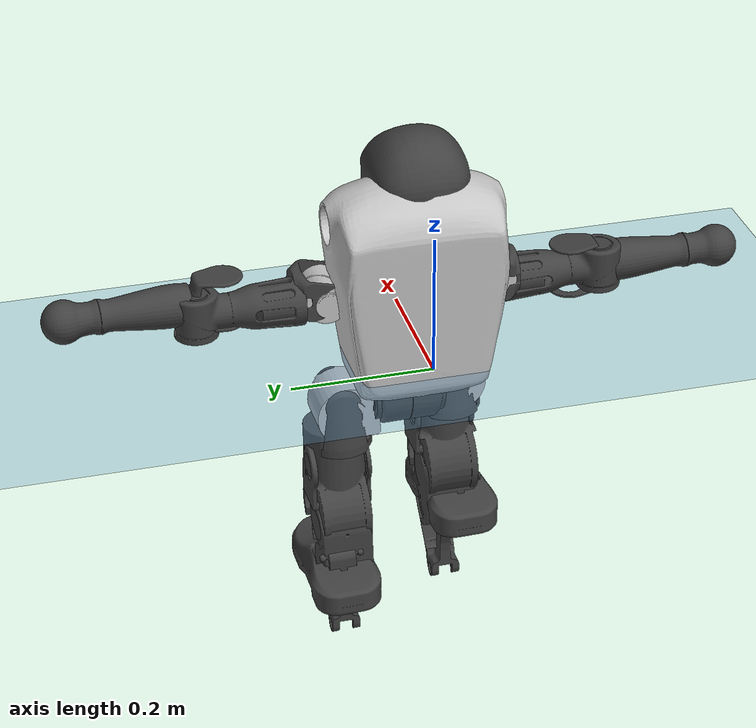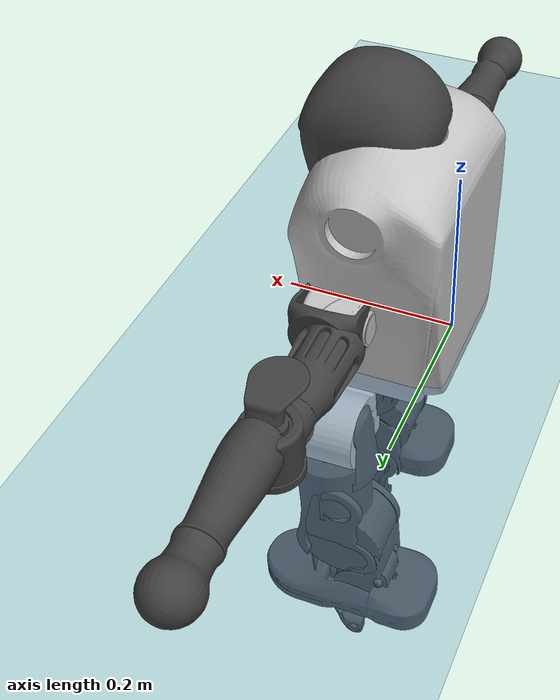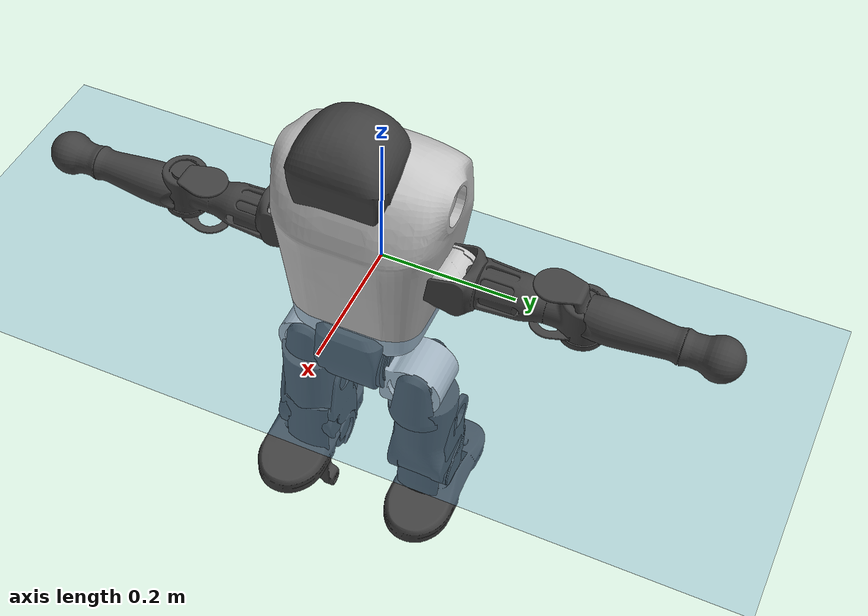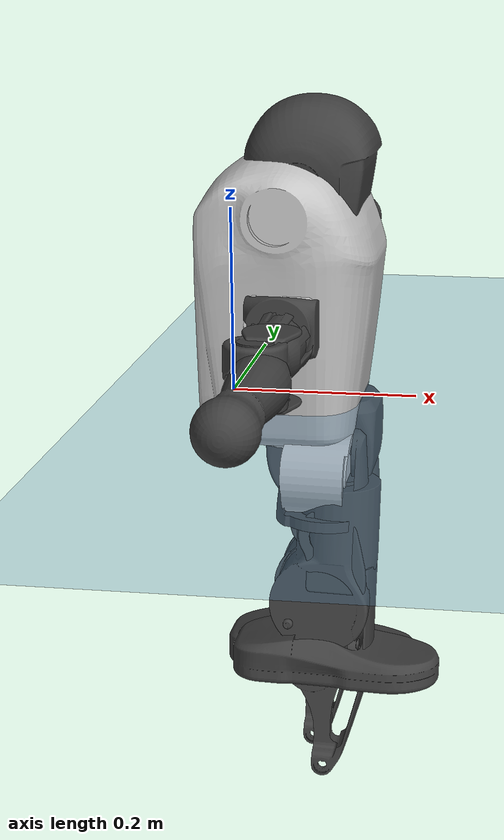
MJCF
<mujoco model="T1">
  <compiler angle="radian" assetdir="assets" balanceinertia="true" inertiafromgeom="false"/>

  <option timestep="0.005" density="1.2" viscosity="2e-05"/>

  <size nkey="1"/>

  <visual>
    <quality shadowsize="8192"/>
    <map shadowclip="0.5"/>
  </visual>

  <default>
    <default class="/">
      <joint armature="0.01" damping="0.01" frictionloss="0.1"/>
      <geom contype="0" conaffinity="0" group="1" solref="-1000 -80"/>
      <site size="0.01 0.005 0.005" group="5"/>
      <general forcelimited="true" biastype="affine" gainprm="25" biasprm="0 -25 -0.6"/>
      <default class="t1">
        <geom rgba="0.25 0.25 0.25 1"/>
        <default class="visual">
          <geom type="mesh" group="2"/>
        </default>
        <default class="collision">
          <geom group="3"/>
        </default>
        <default class="foot">
          <geom size="0.1115 0.05 0.015" type="box" condim="6" group="4" priority="1" solimp="0.015 1 0.015"/>
        </default>
        <default class="reward_collision_sphere">
          <geom group="5" rgba="1 0 0 1"/>
        </default>
      </default>
    </default>
  </default>

  <asset>
    <texture type="skybox" colorspace="auto" name="//unnamed_texture_0" builtin="gradient" rgb1="0.95 0.95 0.95" rgb2="0.95 0.95 0.95" width="100" height="600"/>
    <texture type="2d" colorspace="auto" name="texplane" builtin="checker" rgb1="0.345 0.575 0.748" rgb2="0.345 0.575 0.748" markrgb="1 1 1" width="512" height="512"/>
    <material name="MatPlane" class="/" texture="texplane" texuniform="true" texrepeat="2 2" specular="0.9"/>
    <mesh name="Trunk" class="/" file="Trunk.stl"/>
    <mesh name="H1" class="/" file="H1.stl"/>
    <mesh name="H2" class="/" file="H2.stl"/>
    <mesh name="AL1" class="/" file="AL1.stl"/>
    <mesh name="AL2" class="/" file="AL2.stl"/>
    <mesh name="AL3" class="/" file="AL3.stl"/>
    <mesh name="left_hand_link" class="/" file="left_hand_link.stl"/>
    <mesh name="AR1" class="/" file="AR1.stl"/>
    <mesh name="AR2" class="/" file="AR2.stl"/>
    <mesh name="AR3" class="/" file="AR3.stl"/>
    <mesh name="right_hand_link" class="/" file="right_hand_link.stl"/>
    <mesh name="Waist" class="/" file="Waist.stl"/>
    <mesh name="Hip_Pitch_Left" class="/" file="Hip_Pitch_Left.stl"/>
    <mesh name="Hip_Roll_Left" class="/" file="Hip_Roll_Left.stl"/>
    <mesh name="Hip_Yaw_Left" class="/" file="Hip_Yaw_Left.stl"/>
    <mesh name="Shank_Left" class="/" file="Shank_Left.stl"/>
    <mesh name="Ankle_Cross_Left" class="/" file="Ankle_Cross_Left.stl"/>
    <mesh name="left_foot_link" class="/" file="left_foot_link.stl"/>
    <mesh name="Hip_Pitch_Right" class="/" file="Hip_Pitch_Right.stl"/>
    <mesh name="Hip_Roll_Right" class="/" file="Hip_Roll_Right.stl"/>
    <mesh name="Hip_Yaw_Right" class="/" file="Hip_Yaw_Right.stl"/>
    <mesh name="Shank_Right" class="/" file="Shank_Right.stl"/>
    <mesh name="Ankle_Cross_Right" class="/" file="Ankle_Cross_Right.stl"/>
    <mesh name="right_foot_link" class="/" file="right_foot_link.stl"/>
  </asset>

  <worldbody>
    <geom name="floor" class="/" size="100 100 0.125" type="plane" group="0" material="MatPlane"/>
    <light name="toplight_shadow" class="/" pos="0 0 5" dir="0.0990148 0.0990148 -0.990148" type="directional" ambient="0.04 0.04 0.04" diffuse="0.55 0.55 0.55" specular="0.12 0.12 0.12"/>
    <light name="toplight_fill" class="/" pos="0 0 5" dir="0.0990148 0.0990148 -0.990148" type="directional" castshadow="false" ambient="0.04 0.04 0.04" diffuse="0.3 0.3 0.3" specular="0.08 0.08 0.08"/>
    <body name="trunk" childclass="t1" pos="0.00570901 0.0116508 -0.00994789" quat="0.999982 -0.00184924 0.00572133 -0.000608043">
      <inertial pos="0.0677943 -0.00479921 0.0434943" quat="0.999967 0.00212118 -0.00616462 -0.00493455" mass="6.22321" diaginertia="0.223784 0.0148259 0.000836644"/>
      <joint name="//unnamed_joint_0" type="free" armature="0" damping="0" frictionloss="0"/>
      <geom name="//unnamed_geom_1" class="visual" rgba="0.76 0.76 0.76 1" mesh="Trunk"/>
      <geom name="//unnamed_geom_2" class="collision" size="0.0614587 0.0819449 0.122917" pos="0.0757148 0 0.0558302" type="box"/>
      <geom name="//unnamed_geom_3" class="reward_collision_sphere" size="0.0942366" pos="0.0757148 0 0.0465252"/>
      <geom name="//unnamed_geom_4" class="reward_collision_sphere" size="0.0122917" pos="0.0757148 0.0621504 0"/>
      <geom name="//unnamed_geom_5" class="reward_collision_sphere" size="0.0122917" pos="0.0757148 -0.0621504 0"/>
      <geom name="//unnamed_geom_6" class="reward_collision_sphere" size="0.0122917" pos="0.0757148 0.0782364 0.0837453"/>
      <geom name="//unnamed_geom_7" class="reward_collision_sphere" size="0.0122917" pos="0.0757148 -0.0782364 0.0837453"/>
      <site name="imu" pos="-0.0497475 0.0206932 -0.01947" size="0.00819449"/>
      <camera name="track" pos="0 -1.46236 0" quat="0.707107 0.707107 0 0" mode="trackcom"/>
      <camera name="ego_camera" pos="0.153953 0 0.195406" quat="-0.5 -0.5 0.5 0.5"/>
      <body name="H1" pos="0.0667724 -0.0122275 0.12286" quat="1 -1.25275e-06 2.84481e-05 2.45916e-05">
        <inertial pos="0.00991571 -0.00707536 0.016662" quat="0.737849 -0.0610712 -0.0409795 0.670947" mass="0.275964" diaginertia="0.000828071 4.53644e-05 3.63068e-06"/>
        <joint name="AAHead_yaw" pos="0 0 0" axis="-0.0103705 0.0104916 0.999891" stiffness="0.00225163" range="-1.44601 1.78156" armature="0.0129854" damping="0.0156453" frictionloss="0.0213759"/>
        <geom name="//unnamed_geom_8" class="visual" mesh="H1"/>
        <body name="H2" pos="0.000534538 0.000433835 0.0202734" quat="1 0.00046016 -0.000344304 0.000176244">
          <inertial pos="0.00624707 -0.000286152 0.044933" quat="0.990192 0.0800725 -0.0688044 -0.0915149" mass="0.403364" diaginertia="0.00809818 0.000426669 3.60395e-05"/>
          <joint name="Head_pitch" pos="0 0 0" axis="-0.0043262 -0.999948 -0.00926176" stiffness="0.000492914" range="-1.21087 0.331365" armature="0.0141231" damping="0" frictionloss="0.0981076"/>
          <geom name="//unnamed_geom_9" class="visual" mesh="H2"/>
          <geom name="//unnamed_geom_10" class="collision" size="0.0655559" pos="0.0126191 0 0.0511777"/>
          <geom name="//unnamed_geom_11" class="reward_collision_sphere" size="0.0737504" pos="0.0252383 0 0.0465252"/>
        </body>
      </body>
      <body name="AL1" pos="0.0748506 0.0753511 0.105374" quat="1 -3.95948e-05 0.000600046 -0.000525273">
        <inertial pos="0.00657816 0.0315408 -0.00367615" quat="0.496645 0.532853 -0.448649 0.517809" mass="0.300046" diaginertia="0.00439286 0.000245164 5.44719e-06"/>
        <joint name="Left_Shoulder_Pitch" pos="0 0 0" axis="0.0198514 0.999193 0.0349274" range="-3.3095 1.09972" armature="0.00777713" damping="0.00868961" frictionloss="0.0909749"/>
        <geom name="//unnamed_geom_12" class="visual" rgba="0.76 0.76 0.76 1" mesh="AL1"/>
        <body name="AL2" pos="0.00196722 0.0343907 0.00665762" quat="1 0.000461761 -1.79578e-05 -0.000227738">
          <inertial pos="0.00612524 0.0355169 0.000409992" quat="0.485966 0.509543 -0.489904 0.514001" mass="0.0929753" diaginertia="0.00133372 7.30257e-05 4.15866e-06"/>
          <joint name="Left_Shoulder_Roll" pos="0 0 0" axis="-0.999942 0.00631161 0.00867976" stiffness="0.00776408" range="-1.44693 1.57501" armature="0.00793265" damping="0.0104038" frictionloss="0.0879203"/>
          <geom name="//unnamed_geom_13" class="visual" mesh="AL2"/>
          <body name="AL3" pos="-0.0110118 0.0443919 -0.00723203" quat="0.999987 0.000770018 -0.00191012 0.00463238">
            <inertial pos="0.0133961 0.0619177 -0.00157615" quat="0.706441 0.707674 -0.00176477 0.0116197" mass="0.487377" diaginertia="0.0370616 0.00306069 1.32591e-05"/>
            <joint name="Left_Elbow_Pitch" pos="0 0 0" axis="-0.00222743 -0.999993 -0.00295695" stiffness="0.00723269" range="-2.29551 2.24473" armature="0.0112654" damping="0" frictionloss="0.0927023"/>
            <geom name="//unnamed_geom_14" class="visual" mesh="AL3"/>
            <geom name="//unnamed_geom_15" class="collision" size="0.0245835 0.0614587" pos="0 0.0365591 0" quat="0.707105 0.707108 0 0" type="cylinder"/>
            <geom name="//unnamed_geom_16" class="reward_collision_sphere" size="0.0295002"/>
            <body name="left_hand_link" pos="0.00738503 0.107837 0.0145681" quat="0.999981 -0.00419741 -0.00247237 0.00382564">
              <inertial pos="-0.000981263 0.0891045 -0.00895301" quat="0.704329 0.708869 -0.00881251 -0.0367068" mass="0.218335" diaginertia="0.0260874 0.00197394 6.23507e-06"/>
              <joint name="Left_Elbow_Yaw" pos="0 0 0" axis="0.0019809 -0.00957075 0.999952" range="-2.39966 0.10981" armature="0.0087823" damping="0" frictionloss="0.0781297"/>
              <geom name="//unnamed_geom_17" class="visual" mesh="left_hand_link"/>
              <geom name="//unnamed_geom_18" class="collision" size="0.0245835 0.0717018" pos="0 0.0950535 0" quat="0.707105 0.707108 0 0" type="cylinder"/>
              <geom name="//unnamed_geom_19" class="reward_collision_sphere" size="0.0409724"/>
              <geom name="//unnamed_geom_20" class="reward_collision_sphere" size="0.0286807" pos="0 0.0804299 0"/>
              <geom name="//unnamed_geom_21" class="reward_collision_sphere" size="0.0286807" pos="0 0.157204 0"/>
            </body>
          </body>
        </body>
      </body>
      <body name="AR1" pos="0.0648343 -0.0641662 0.109178" quat="0.999999 -0.000511027 0.000687326 -0.00107976">
        <inertial pos="3.66244e-05 -0.021453 -0.0133012" quat="0.507298 0.497093 -0.495531 0.499996" mass="0.319159" diaginertia="0.00487125 0.000345213 6.93662e-06"/>
        <joint name="Right_Shoulder_Pitch" pos="0 0 0" axis="-0.0520798 -0.997962 0.0368764" range="-1.43298 3.31455" armature="0.00610966" damping="0" frictionloss="0.0392106"/>
        <geom name="//unnamed_geom_22" class="visual" rgba="0.76 0.76 0.76 1" mesh="AR1"/>
        <body name="AR2" pos="0.000865159 -0.026764 0.000702482" quat="0.999992 -0.00155114 0.00221752 -0.0029497">
          <inertial pos="0.0128285 -0.0266781 0.00825925" quat="0.491882 0.485387 -0.504712 0.517414" mass="0.0691893" diaginertia="0.00105908 5.87996e-05 3.71287e-06"/>
          <joint name="Right_Shoulder_Roll" pos="0 0 0" axis="-0.999374 -0.0153909 0.0318695" stiffness="0.0221707" range="-1.72098 1.56752" armature="0.0129143" damping="0" frictionloss="0.0898233"/>
          <geom name="//unnamed_geom_23" class="visual" mesh="AR2"/>
          <body name="AR3" pos="0.00171967 -0.0326273 -0.0124136" quat="0.999985 -0.00174321 -0.00454508 0.00245668">
            <inertial pos="-0.0146309 -0.0630551 -0.0119352" quat="0.706249 0.707945 0.00477987 0.0018691" mass="0.623724" diaginertia="0.0534584 0.00302 1.61347e-05"/>
            <joint name="Right_Elbow_Pitch" pos="0 0 0" axis="-0.00183868 0.999993 0.00311847" stiffness="0.0341486" range="-2.21262 2.24947" armature="0.00901441" damping="0.00415451" frictionloss="0.0214505"/>
            <geom name="//unnamed_geom_24" class="visual" mesh="AR3"/>
            <geom name="//unnamed_geom_25" class="collision" size="0.0245835 0.0614587" pos="0 -0.0365591 0" quat="0.707105 0.707108 0 0" type="cylinder"/>
            <geom name="//unnamed_geom_26" class="reward_collision_sphere" size="0.0295002"/>
            <body name="right_hand_link" pos="0.00844848 -0.107342 -0.00206681" quat="1 -0.000112786 9.63878e-05 0.000209335">
              <inertial pos="0.00134481 -0.08424 0.00354507" quat="0.707488 0.706723 0.00185315 0.00085802" mass="0.169057" diaginertia="0.0214993 0.00140206 4.19959e-06"/>
              <joint name="Right_Elbow_Yaw" pos="0 0 0" axis="0.0386306 0.0587306 0.997526" range="0.088165 2.43956" armature="0.0111466" damping="0.00502152" frictionloss="0.0502203"/>
              <geom name="//unnamed_geom_27" class="visual" mesh="right_hand_link"/>
              <geom name="//unnamed_geom_28" class="collision" size="0.0245835 0.0717018" pos="0 -0.0950535 0" quat="0.707105 0.707108 0 0" type="cylinder"/>
              <geom name="//unnamed_geom_29" class="reward_collision_sphere" size="0.0409724"/>
              <geom name="//unnamed_geom_30" class="reward_collision_sphere" size="0.0286807" pos="0 -0.0804299 0"/>
              <geom name="//unnamed_geom_31" class="reward_collision_sphere" size="0.0286807" pos="0 -0.157204 0"/>
            </body>
          </body>
        </body>
      </body>
      <body name="Waist" pos="0.0936425 0.00634608 -0.0580835" quat="0.999977 -0.00330939 0.00586698 1.69265e-05">
        <inertial pos="0.0156837 -0.00997645 0.0130233" quat="0.971416 0.0366603 -0.234314 -0.0101665" mass="1.728" diaginertia="0.0183092 0.0012318 0.000113746"/>
        <joint name="Waist" pos="0 0 0" axis="0.0301272 -0.02999 0.999096" range="-1.55691 1.49749" armature="0.008315" damping="0.00779523" frictionloss="0.0864055"/>
        <geom name="//unnamed_geom_32" class="visual" mesh="Waist"/>
        <body name="Hip_Pitch_Left" pos="0.00147834 0.0876458 -0.0115117" quat="0.999998 -0.00145588 0.00100002 0.000190668">
          <inertial pos="-0.0119704 -0.00536807 -0.00791309" quat="0.974634 0.213538 0.0297678 0.0600397" mass="0.499733" diaginertia="0.00599808 0.000238547 2.58854e-05"/>
          <joint name="Left_Hip_Pitch" pos="0 0 0" axis="0.0496859 0.998655 -0.0147999" range="-1.91809 1.62848" armature="0.00505104" damping="0" frictionloss="0.0812843"/>
          <geom name="//unnamed_geom_33" class="visual" rgba="0.76 0.76 0.76 1" mesh="Hip_Pitch_Left"/>
          <body name="Hip_Roll_Left" pos="0.00409329 0.00660508 -0.00157026" quat="1 -0.000194402 0.000188586 0.000496259">
            <inertial pos="0.00227573 0.0141083 -0.0189465" quat="0.704772 -0.00621716 -0.00553811 0.709385" mass="0.233605" diaginertia="0.00719213 0.000416061 1.02949e-05"/>
            <joint name="Left_Hip_Roll" pos="0 0 0" axis="-0.999453 0.0289042 0.0160513" range="-1.51109 0.0553146" armature="0.00681748" damping="0.0753059" frictionloss="0.0398112"/>
            <geom name="//unnamed_geom_34" class="visual" mesh="Hip_Roll_Left"/>
            <geom name="//unnamed_geom_35" class="reward_collision_sphere" size="0.0450697"/>
            <body name="Hip_Yaw_Left" pos="-0.00212183 0.00689799 -0.0440554" quat="0.999992 -0.00384156 0.000965467 -0.000848639">
              <inertial pos="-0.0119364 -0.00420551 -0.0319364" quat="0.686648 -0.0379107 -0.0124524 0.725894" mass="1.14438" diaginertia="0.0911264 0.00615795 6.51356e-05"/>
              <joint name="Left_Hip_Yaw" pos="0 0 0" axis="0.00127001 0.00922839 -0.999957" stiffness="0.0604706" range="-0.722039 1.04073" armature="0.00791965" damping="0.0055148" frictionloss="0.0868023"/>
              <geom name="//unnamed_geom_36" class="visual" mesh="Hip_Yaw_Left"/>
              <geom name="//unnamed_geom_37" class="collision" size="0.0409724 0.0655559" type="cylinder"/>
              <body name="Shank_Left" pos="-0.0181889 0.00142281 -0.0561643" quat="1 7.61083e-06 -1.53832e-05 -1.36089e-05">
                <inertial pos="0.00272954 0.00113611 -0.059371" quat="0.99407 -0.00591404 -0.0358193 0.1025" mass="0.906496" diaginertia="0.094554 0.00814428 4.41066e-05"/>
                <joint name="Left_Knee_Pitch" pos="0 0 0" axis="-0.00447957 0.999507 -0.0310758" range="-0.0109916 2.51386" armature="0.00391617" damping="0.0550611" frictionloss="0.0828862"/>
                <geom name="//unnamed_geom_38" class="visual" mesh="Shank_Left"/>
                <geom name="//unnamed_geom_39" class="collision" size="0.0409724 0.0614587" pos="0 0 -0.0558302" type="cylinder"/>
                <geom name="//unnamed_geom_40" class="reward_collision_sphere" size="0.0532642"/>
                <body name="Ankle_Cross_Left" pos="-0.0106898 0.000824655 -0.145246" quat="0.999993 0.00105881 -0.00361105 -0.000572738">
                  <inertial pos="0.0101393 -0.0024973 -0.0114677" quat="0.442447 0.551261 0.550975 0.443597" mass="0.0398918" diaginertia="0.000103452 5.42482e-06 2.32594e-07"/>
                  <joint name="Left_Ankle_Pitch" pos="0 0 0" axis="0.000145868 0.999997 0.00223516" stiffness="0.0540536" range="-0.894385 0.344414" armature="0.00206814" damping="0" frictionloss="0.081145"/>
                  <geom name="//unnamed_geom_41" class="visual" mesh="Ankle_Cross_Left"/>
                  <body name="left_foot_link" pos="0.00478533 0.00932346 -0.0150081" quat="0.999972 -0.00740389 0.000778597 -0.000389778">
                    <inertial pos="0.00993534 0.0075499 -0.00240432" quat="-0.0277457 0.635067 0.0524523 0.770174" mass="0.312567" diaginertia="0.00776937 0.000473505 3.72063e-05"/>
                    <joint name="Left_Ankle_Roll" pos="0 0 0" axis="-0.997361 0.0298936 -0.0661582" range="-0.535697 0.263946" armature="0.00893889" damping="0.0569098" frictionloss="0.0960673"/>
                    <geom name="//unnamed_geom_42" class="visual" mesh="left_foot_link"/>
                    <geom name="left_foot" class="foot" size="0.0660005 0.0574303 0.0123295" pos="0.0126191 0 -0.00697878"/>
                    <geom name="//unnamed_geom_44" class="reward_collision_sphere" size="0.0426113" pos="0.0126191 0 -0.00697878"/>
                    <geom name="//unnamed_geom_45" class="reward_collision_sphere" size="0.0245835" pos="0.119882 -0.0168172 -0.00697878"/>
                    <geom name="//unnamed_geom_46" class="reward_collision_sphere" size="0.0245835" pos="-0.0883339 -0.0168172 -0.00697878"/>
                    <site name="left_foot" class="foot" pos="0.0126191 0 -0.00697878" size="0.00819449"/>
                  </body>
                </body>
              </body>
            </body>
          </body>
        </body>
        <body name="Hip_Pitch_Right" pos="0.00317158 -0.0695308 0.0142585" quat="1 0.000207922 0.000280817 -0.000487817">
          <inertial pos="0.0140509 0.0175648 -0.00341967" quat="0.971343 -0.237581 0.000130792 0.00698119" mass="0.556467" diaginertia="0.00499708 0.000271513 2.74576e-05"/>
          <joint name="Right_Hip_Pitch" pos="0 0 0" axis="0.00720637 -0.999827 -0.0171726" stiffness="0.0260042" range="-1.49834 1.97617" armature="0.0104105" damping="0.0699164" frictionloss="0.0580359"/>
          <geom name="//unnamed_geom_47" class="visual" rgba="0.76 0.76 0.76 1" mesh="Hip_Pitch_Right"/>
          <body name="Hip_Roll_Right" pos="0.00874177 0.00187493 0.00487014" quat="0.999992 -0.00220075 0.0033272 0.000954926">
            <inertial pos="0.0108753 -0.00520774 -0.034393" quat="0.721958 -0.058496 -0.011449 0.689364" mass="0.200849" diaginertia="0.00475718 0.000342685 1.14846e-05"/>
            <joint name="Right_Hip_Roll" pos="0 0 0" axis="-0.999817 -0.00665862 -0.0179392" stiffness="0.00759534" range="-0.154692 1.55851" armature="0.00870191" damping="0" frictionloss="0.0438617"/>
            <geom name="//unnamed_geom_48" class="visual" mesh="Hip_Roll_Right"/>
            <geom name="//unnamed_geom_49" class="reward_collision_sphere" size="0.0450697"/>
            <body name="Hip_Yaw_Right" pos="0.0139518 0.00436719 -0.0329543" quat="1 -0.000144892 1.5155e-05 -1.78404e-05">
              <inertial pos="-0.00704384 0.00361205 -0.0498772" quat="0.714618 -0.0325825 -0.0353525 0.697861" mass="1.21354" diaginertia="0.0690441 0.00562505 4.70036e-05"/>
              <joint name="Right_Hip_Yaw" pos="0 0 0" axis="0.00298131 -0.00475764 -0.999984" stiffness="0.0169276" range="-1.02827 0.964727" armature="0.00736125" damping="0" frictionloss="0.102583"/>
              <geom name="//unnamed_geom_50" class="visual" mesh="Hip_Yaw_Right"/>
              <geom name="//unnamed_geom_51" class="collision" size="0.0409724 0.0655559" type="cylinder"/>
              <body name="Shank_Right" pos="-0.00612127 0.0038028 -0.0528057" quat="0.999997 -0.00234911 0.000703413 0.00088569">
                <inertial pos="-0.00686902 0.0110771 -0.0587919" quat="0.997618 -0.0289877 -0.0610098 -0.0139724" mass="0.840604" diaginertia="0.120054 0.00733672 4.93561e-05"/>
                <joint name="Right_Knee_Pitch" pos="0 0 0" axis="0.00108531 -0.999999 -0.000394903" range="-2.08988 0.00188916" armature="0.00978585" damping="0.000440639" frictionloss="0.0897486"/>
                <geom name="//unnamed_geom_52" class="visual" mesh="Shank_Right"/>
                <geom name="//unnamed_geom_53" class="collision" size="0.0409724 0.0614587" pos="0 0 -0.0558302" type="cylinder"/>
                <geom name="//unnamed_geom_54" class="reward_collision_sphere" size="0.0532642"/>
                <body name="Ankle_Cross_Right" pos="0.0033679 -0.00332126 -0.124575" quat="1 6.13026e-05 -0.000134139 0.000601965">
                  <inertial pos="-0.0062756 -0.00726885 -0.00460488" quat="0.443453 0.551836 0.549979 0.443113" mass="0.0443785" diaginertia="7.8448e-05 5.94758e-06 2.09068e-07"/>
                  <joint name="Right_Ankle_Pitch" pos="0 0 0" axis="-0.0213576 -0.998173 -0.0565226" stiffness="0.0529741" range="-0.519313 1.0724" armature="0.0079193" damping="0" frictionloss="0.0869253"/>
                  <geom name="//unnamed_geom_55" class="visual" mesh="Ankle_Cross_Right"/>
                  <body name="right_foot_link" pos="-0.00201745 -0.0114511 -0.0113077" quat="1 -0.000343667 0.00020594 -3.32967e-05">
                    <inertial pos="-0.000212462 -0.0114761 0.0100669" quat="-0.047977 0.598846 -0.0177938 0.799228" mass="0.48382" diaginertia="0.0100627 0.000600496 6.62385e-05"/>
                    <joint name="Right_Ankle_Roll" pos="0 0 0" axis="-0.999652 0.0135581 0.022609" range="-0.223412 0.177937" armature="0.0140535" damping="0.0777398" frictionloss="0.0427125"/>
                    <geom name="//unnamed_geom_56" class="visual" mesh="right_foot_link"/>
                    <geom name="right_foot" class="foot" size="0.0722473 0.0579733 0.00694977" pos="0.0126191 0 -0.00697878"/>
                    <geom name="//unnamed_geom_58" class="reward_collision_sphere" size="0.0327779"/>
                    <geom name="//unnamed_geom_59" class="reward_collision_sphere" size="0.0245835" pos="0.0126191 0 -0.00697878"/>
                    <geom name="//unnamed_geom_60" class="reward_collision_sphere" size="0.0245835" pos="0.119882 0.0168172 -0.00697878"/>
                    <geom name="//unnamed_geom_61" class="reward_collision_sphere" size="0.0245835" pos="-0.0883339 0.0168172 -0.00697878"/>
                    <site name="right_foot" class="foot" pos="0.0126191 0 -0.00697878" size="0.00819449"/>
                  </body>
                </body>
              </body>
            </body>
          </body>
        </body>
      </body>
    </body>
  </worldbody>

  <contact>
    <pair class="/" geom1="floor" geom2="left_foot" name="//unnamed_contact_0"/>
    <pair class="/" geom1="floor" geom2="right_foot" name="//unnamed_contact_1"/>
  </contact>

  <actuator>
    <general name="AAHead_yaw" class="/" joint="AAHead_yaw" forcerange="-5.493 5.493" gainprm="23.8878" biasprm="0 -23.8878 -0.399118"/>
    <general name="Head_pitch" class="/" joint="Head_pitch" forcerange="-5.81504 5.81504" gainprm="23.8878" biasprm="0 -23.8878 -0.399118"/>
    <general name="Left_Shoulder_Pitch" class="/" joint="Left_Shoulder_Pitch" forcerange="-22.8873 22.8873" gainprm="23.8878" biasprm="0 -23.8878 -0.399118"/>
    <general name="Left_Shoulder_Roll" class="/" joint="Left_Shoulder_Roll" forcerange="-21.3789 21.3789" gainprm="23.8878" biasprm="0 -23.8878 -0.399118"/>
    <general name="Left_Elbow_Pitch" class="/" joint="Left_Elbow_Pitch" forcerange="-9.79001 9.79001" gainprm="23.8878" biasprm="0 -23.8878 -0.399118"/>
    <general name="Left_Elbow_Yaw" class="/" joint="Left_Elbow_Yaw" forcerange="-14.3448 14.3448" gainprm="23.8878" biasprm="0 -23.8878 -0.399118"/>
    <general name="Right_Shoulder_Pitch" class="/" joint="Right_Shoulder_Pitch" forcerange="-16.3938 16.3938" gainprm="23.8878" biasprm="0 -23.8878 -0.399118"/>
    <general name="Right_Shoulder_Roll" class="/" joint="Right_Shoulder_Roll" forcerange="-9.44953 9.44953" gainprm="23.8878" biasprm="0 -23.8878 -0.399118"/>
    <general name="Right_Elbow_Pitch" class="/" joint="Right_Elbow_Pitch" forcerange="-13.3039 13.3039" gainprm="23.8878" biasprm="0 -23.8878 -0.399118"/>
    <general name="Right_Elbow_Yaw" class="/" joint="Right_Elbow_Yaw" forcerange="-16.8072 16.8072" gainprm="23.8878" biasprm="0 -23.8878 -0.399118"/>
    <general name="Waist" class="/" joint="Waist" forcerange="-34.8054 34.8054" gainprm="23.8878" biasprm="0 -23.8878 -0.399118"/>
    <general name="Left_Hip_Pitch" class="/" joint="Left_Hip_Pitch" forcerange="-34.8007 34.8007" gainprm="23.8878" biasprm="0 -23.8878 -0.399118"/>
    <general name="Left_Hip_Roll" class="/" joint="Left_Hip_Roll" forcerange="-19.4958 19.4958" gainprm="23.8878" biasprm="0 -23.8878 -0.399118"/>
    <general name="Left_Hip_Yaw" class="/" joint="Left_Hip_Yaw" forcerange="-31.8875 31.8875" gainprm="23.8878" biasprm="0 -23.8878 -0.399118"/>
    <general name="Left_Knee_Pitch" class="/" joint="Left_Knee_Pitch" forcerange="-47.1378 47.1378" gainprm="23.8878" biasprm="0 -23.8878 -0.399118"/>
    <general name="Left_Ankle_Pitch" class="/" joint="Left_Ankle_Pitch" forcerange="-16.2952 16.2952" gainprm="23.8878" biasprm="0 -23.8878 -0.399118"/>
    <general name="Left_Ankle_Roll" class="/" joint="Left_Ankle_Roll" forcerange="-10.0612 10.0612" gainprm="23.8878" biasprm="0 -23.8878 -0.399118"/>
    <general name="Right_Hip_Pitch" class="/" joint="Right_Hip_Pitch" forcerange="-20.1037 20.1037" gainprm="23.8878" biasprm="0 -23.8878 -0.399118"/>
    <general name="Right_Hip_Roll" class="/" joint="Right_Hip_Roll" forcerange="-11.3872 11.3872" gainprm="23.8878" biasprm="0 -23.8878 -0.399118"/>
    <general name="Right_Hip_Yaw" class="/" joint="Right_Hip_Yaw" forcerange="-23.6199 23.6199" gainprm="23.8878" biasprm="0 -23.8878 -0.399118"/>
    <general name="Right_Knee_Pitch" class="/" joint="Right_Knee_Pitch" forcerange="-35.4931 35.4931" gainprm="23.8878" biasprm="0 -23.8878 -0.399118"/>
    <general name="Right_Ankle_Pitch" class="/" joint="Right_Ankle_Pitch" forcerange="-25.0259 25.0259" gainprm="23.8878" biasprm="0 -23.8878 -0.399118"/>
    <general name="Right_Ankle_Roll" class="/" joint="Right_Ankle_Roll" forcerange="-7.33973 7.33973" gainprm="23.8878" biasprm="0 -23.8878 -0.399118"/>
  </actuator>

  <sensor>
    <gyro site="imu" name="imu_angular_velocity"/>
    <velocimeter site="imu" name="imu_linear_velocity"/>
    <framelinvel objtype="site" objname="left_foot" name="left_foot_global_linear_velocity"/>
    <framelinvel objtype="site" objname="right_foot" name="right_foot_global_linear_velocity"/>
  </sensor>

  <keyframe>
    <key name="home" qpos="0 0 0.6385 1 0 0 0 0 0 0 1.4 0 -0.4 0 -1.4 0 0.4 0 -0.4 0 0 0.8 -0.4 0 0.4 0 0 -0.8 0.4 0"/>
  </keyframe>
</mujoco>
